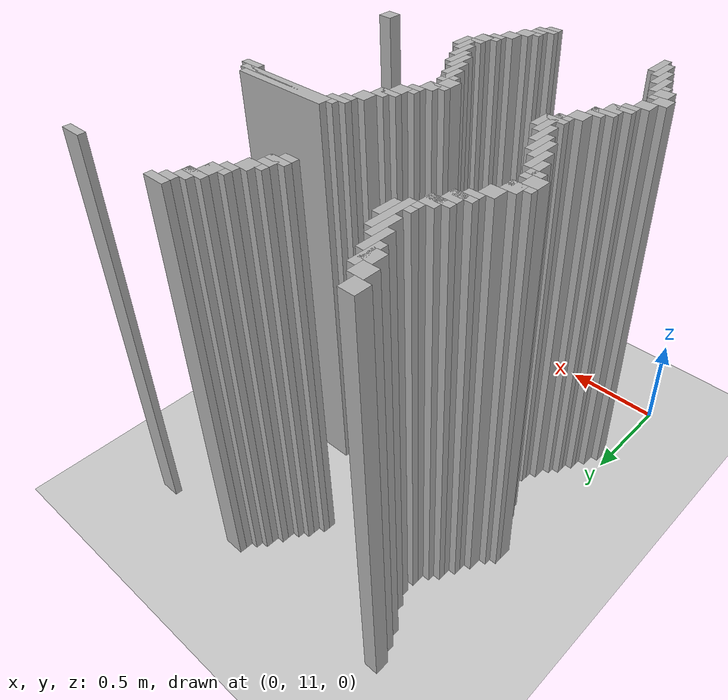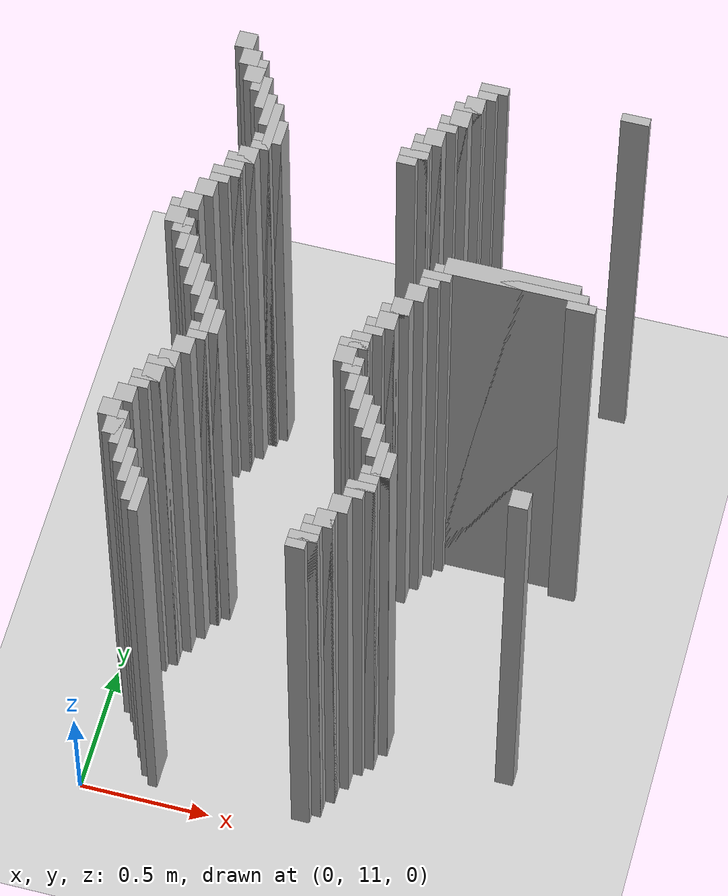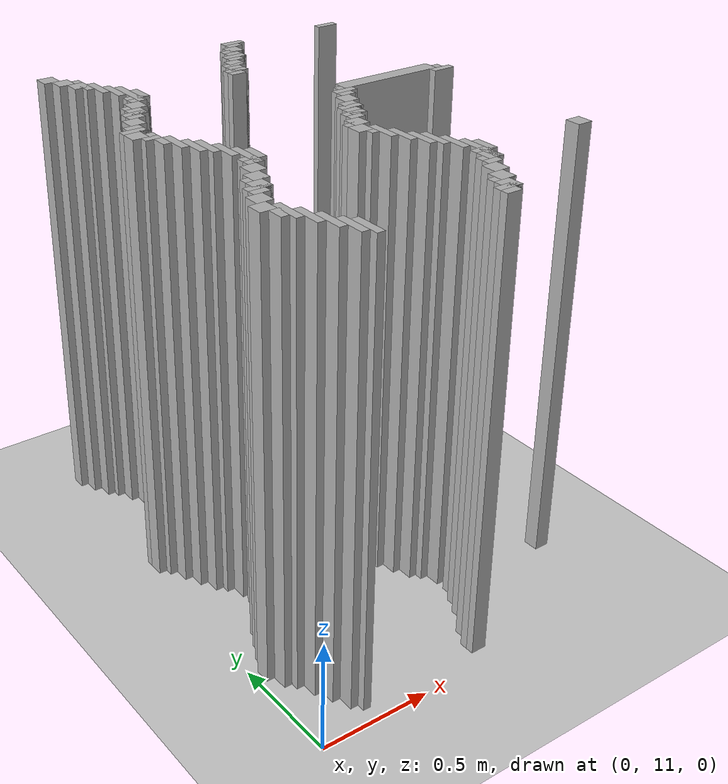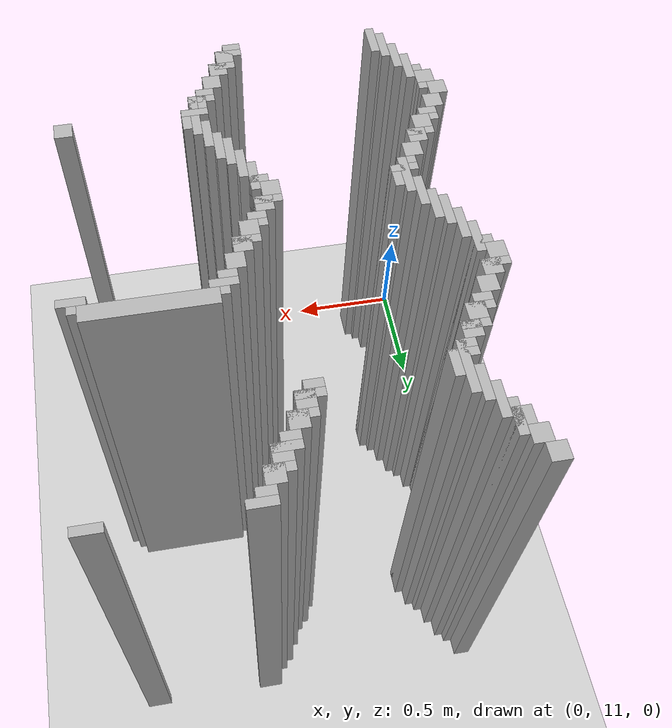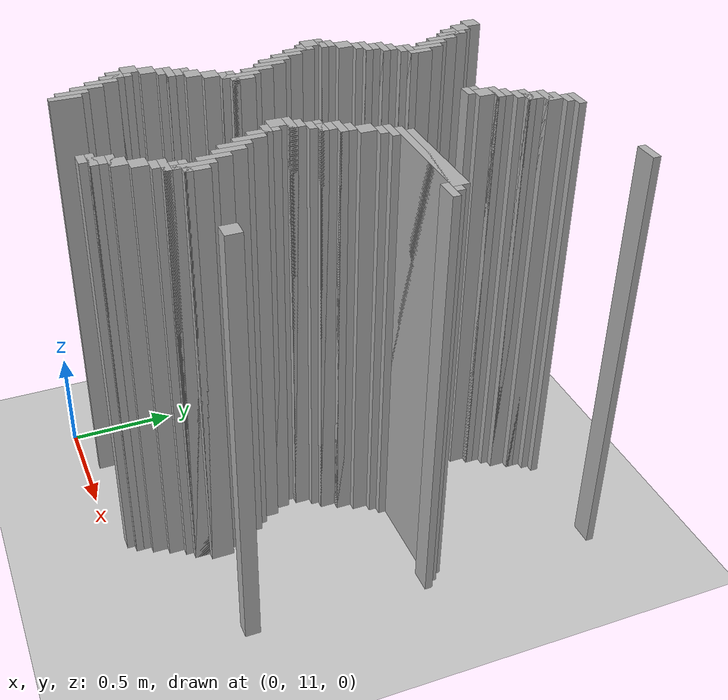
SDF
<sdf version="1.6">
 <world name="slam_world">
  <model name="ground_plane">
   <static>true</static>
   <link name="link">
    <collision name="collision">
     <geometry><plane><normal>0 0 1</normal><size>100 100</size></plane></geometry>
    </collision>
    <visual name="visual">
     <geometry><plane><normal>0 0 1</normal><size>100 100</size></plane></geometry>
     <material>
      <ambient>0.8 0.8 0.8 1</ambient>
      <diffuse>0.8 0.8 0.8 1</diffuse>
      <specular>0.8 0.8 0.8 1</specular>
     </material>
    </visual>
   </link>
  </model>
  <model name="wall_1372">
   <static>true</static>
   <pose>0.10440835266821345 13.085846867749419 1.0 0 0 0</pose>
   <link name="link">
    <collision name="collision">
     <geometry><box><size>0.06960556844547564 0.06960556844547564 2.0</size></box></geometry>
    </collision>
    <visual name="visual">
     <geometry><box><size>0.06960556844547564 0.06960556844547564 2.0</size></box></geometry>
     <material><ambient>0.5 0.5 0.5 1</ambient><diffuse>0.7 0.7 0.7 1</diffuse></material>
    </visual>
   </link>
  </model>
  <model name="wall_1373">
   <static>true</static>
   <pose>1.0266821345707655 13.103248259860788 1.0 0 0 0</pose>
   <link name="link">
    <collision name="collision">
     <geometry><box><size>0.10440835266821345 0.03480278422273782 2.0</size></box></geometry>
    </collision>
    <visual name="visual">
     <geometry><box><size>0.10440835266821345 0.03480278422273782 2.0</size></box></geometry>
     <material><ambient>0.5 0.5 0.5 1</ambient><diffuse>0.7 0.7 0.7 1</diffuse></material>
    </visual>
   </link>
  </model>
  <model name="wall_1374">
   <static>true</static>
   <pose>1.548723897911833 13.103248259860788 1.0 0 0 0</pose>
   <link name="link">
    <collision name="collision">
     <geometry><box><size>0.10440835266821345 0.03480278422273782 2.0</size></box></geometry>
    </collision>
    <visual name="visual">
     <geometry><box><size>0.10440835266821345 0.03480278422273782 2.0</size></box></geometry>
     <material><ambient>0.5 0.5 0.5 1</ambient><diffuse>0.7 0.7 0.7 1</diffuse></material>
    </visual>
   </link>
  </model>
  <model name="wall_1387">
   <static>true</static>
   <pose>1.0092807424593968 13.06844547563805 1.0 0 0 0</pose>
   <link name="link">
    <collision name="collision">
     <geometry><box><size>0.06960556844547564 0.03480278422273782 2.0</size></box></geometry>
    </collision>
    <visual name="visual">
     <geometry><box><size>0.06960556844547564 0.03480278422273782 2.0</size></box></geometry>
     <material><ambient>0.5 0.5 0.5 1</ambient><diffuse>0.7 0.7 0.7 1</diffuse></material>
    </visual>
   </link>
  </model>
  <model name="wall_1399">
   <static>true</static>
   <pose>0.13921113689095127 13.016241299303944 1.0 0 0 0</pose>
   <link name="link">
    <collision name="collision">
     <geometry><box><size>0.06960556844547564 0.06960556844547564 2.0</size></box></geometry>
    </collision>
    <visual name="visual">
     <geometry><box><size>0.06960556844547564 0.06960556844547564 2.0</size></box></geometry>
     <material><ambient>0.5 0.5 0.5 1</ambient><diffuse>0.7 0.7 0.7 1</diffuse></material>
    </visual>
   </link>
  </model>
  <model name="wall_1400">
   <static>true</static>
   <pose>0.974477958236659 13.016241299303944 1.0 0 0 0</pose>
   <link name="link">
    <collision name="collision">
     <geometry><box><size>0.06960556844547564 0.06960556844547564 2.0</size></box></geometry>
    </collision>
    <visual name="visual">
     <geometry><box><size>0.06960556844547564 0.06960556844547564 2.0</size></box></geometry>
     <material><ambient>0.5 0.5 0.5 1</ambient><diffuse>0.7 0.7 0.7 1</diffuse></material>
    </visual>
   </link>
  </model>
  <model name="wall_1414">
   <static>true</static>
   <pose>0.191415313225058 12.946635730858468 1.0 0 0 0</pose>
   <link name="link">
    <collision name="collision">
     <geometry><box><size>0.03480278422273782 0.13921113689095127 2.0</size></box></geometry>
    </collision>
    <visual name="visual">
     <geometry><box><size>0.03480278422273782 0.13921113689095127 2.0</size></box></geometry>
     <material><ambient>0.5 0.5 0.5 1</ambient><diffuse>0.7 0.7 0.7 1</diffuse></material>
    </visual>
   </link>
  </model>
  <model name="wall_1415">
   <static>true</static>
   <pose>0.95707656612529 12.998839907192576 1.0 0 0 0</pose>
   <link name="link">
    <collision name="collision">
     <geometry><box><size>0.10440835266821345 0.03480278422273782 2.0</size></box></geometry>
    </collision>
    <visual name="visual">
     <geometry><box><size>0.10440835266821345 0.03480278422273782 2.0</size></box></geometry>
     <material><ambient>0.5 0.5 0.5 1</ambient><diffuse>0.7 0.7 0.7 1</diffuse></material>
    </visual>
   </link>
  </model>
  <model name="wall_1429">
   <static>true</static>
   <pose>0.17401392111368907 12.946635730858468 1.0 0 0 0</pose>
   <link name="link">
    <collision name="collision">
     <geometry><box><size>0.06960556844547564 0.06960556844547564 2.0</size></box></geometry>
    </collision>
    <visual name="visual">
     <geometry><box><size>0.06960556844547564 0.06960556844547564 2.0</size></box></geometry>
     <material><ambient>0.5 0.5 0.5 1</ambient><diffuse>0.7 0.7 0.7 1</diffuse></material>
    </visual>
   </link>
  </model>
  <model name="wall_1430">
   <static>true</static>
   <pose>0.9396751740139211 12.946635730858468 1.0 0 0 0</pose>
   <link name="link">
    <collision name="collision">
     <geometry><box><size>0.06960556844547564 0.06960556844547564 2.0</size></box></geometry>
    </collision>
    <visual name="visual">
     <geometry><box><size>0.06960556844547564 0.06960556844547564 2.0</size></box></geometry>
     <material><ambient>0.5 0.5 0.5 1</ambient><diffuse>0.7 0.7 0.7 1</diffuse></material>
    </visual>
   </link>
  </model>
  <model name="wall_1444">
   <static>true</static>
   <pose>0.2262180974477958 12.877030162412993 1.0 0 0 0</pose>
   <link name="link">
    <collision name="collision">
     <geometry><box><size>0.03480278422273782 0.13921113689095127 2.0</size></box></geometry>
    </collision>
    <visual name="visual">
     <geometry><box><size>0.03480278422273782 0.13921113689095127 2.0</size></box></geometry>
     <material><ambient>0.5 0.5 0.5 1</ambient><diffuse>0.7 0.7 0.7 1</diffuse></material>
    </visual>
   </link>
  </model>
  <model name="wall_1445">
   <static>true</static>
   <pose>0.9222737819025522 12.929234338747099 1.0 0 0 0</pose>
   <link name="link">
    <collision name="collision">
     <geometry><box><size>0.10440835266821345 0.03480278422273782 2.0</size></box></geometry>
    </collision>
    <visual name="visual">
     <geometry><box><size>0.10440835266821345 0.03480278422273782 2.0</size></box></geometry>
     <material><ambient>0.5 0.5 0.5 1</ambient><diffuse>0.7 0.7 0.7 1</diffuse></material>
    </visual>
   </link>
  </model>
  <model name="wall_1459">
   <static>true</static>
   <pose>0.9048723897911832 12.894431554524362 1.0 0 0 0</pose>
   <link name="link">
    <collision name="collision">
     <geometry><box><size>0.06960556844547564 0.03480278422273782 2.0</size></box></geometry>
    </collision>
    <visual name="visual">
     <geometry><box><size>0.06960556844547564 0.03480278422273782 2.0</size></box></geometry>
     <material><ambient>0.5 0.5 0.5 1</ambient><diffuse>0.7 0.7 0.7 1</diffuse></material>
    </visual>
   </link>
  </model>
  <model name="wall_1467">
   <static>true</static>
   <pose>0.2610208816705336 12.807424593967516 1.0 0 0 0</pose>
   <link name="link">
    <collision name="collision">
     <geometry><box><size>0.03480278422273782 0.13921113689095127 2.0</size></box></geometry>
    </collision>
    <visual name="visual">
     <geometry><box><size>0.03480278422273782 0.13921113689095127 2.0</size></box></geometry>
     <material><ambient>0.5 0.5 0.5 1</ambient><diffuse>0.7 0.7 0.7 1</diffuse></material>
    </visual>
   </link>
  </model>
  <model name="wall_1468">
   <static>true</static>
   <pose>0.8700696055684455 12.842227378190255 1.0 0 0 0</pose>
   <link name="link">
    <collision name="collision">
     <geometry><box><size>0.06960556844547564 0.06960556844547564 2.0</size></box></geometry>
    </collision>
    <visual name="visual">
     <geometry><box><size>0.06960556844547564 0.06960556844547564 2.0</size></box></geometry>
     <material><ambient>0.5 0.5 0.5 1</ambient><diffuse>0.7 0.7 0.7 1</diffuse></material>
    </visual>
   </link>
  </model>
  <model name="wall_1482">
   <static>true</static>
   <pose>0.29582366589327147 12.737819025522041 1.0 0 0 0</pose>
   <link name="link">
    <collision name="collision">
     <geometry><box><size>0.03480278422273782 0.2088167053364269 2.0</size></box></geometry>
    </collision>
    <visual name="visual">
     <geometry><box><size>0.03480278422273782 0.2088167053364269 2.0</size></box></geometry>
     <material><ambient>0.5 0.5 0.5 1</ambient><diffuse>0.7 0.7 0.7 1</diffuse></material>
    </visual>
   </link>
  </model>
  <model name="wall_1483">
   <static>true</static>
   <pose>0.8526682134570766 12.824825986078885 1.0 0 0 0</pose>
   <link name="link">
    <collision name="collision">
     <geometry><box><size>0.10440835266821345 0.03480278422273782 2.0</size></box></geometry>
    </collision>
    <visual name="visual">
     <geometry><box><size>0.10440835266821345 0.03480278422273782 2.0</size></box></geometry>
     <material><ambient>0.5 0.5 0.5 1</ambient><diffuse>0.7 0.7 0.7 1</diffuse></material>
    </visual>
   </link>
  </model>
  <model name="wall_1497">
   <static>true</static>
   <pose>0.8352668213457076 12.772621809744779 1.0 0 0 0</pose>
   <link name="link">
    <collision name="collision">
     <geometry><box><size>0.06960556844547564 0.06960556844547564 2.0</size></box></geometry>
    </collision>
    <visual name="visual">
     <geometry><box><size>0.06960556844547564 0.06960556844547564 2.0</size></box></geometry>
     <material><ambient>0.5 0.5 0.5 1</ambient><diffuse>0.7 0.7 0.7 1</diffuse></material>
    </visual>
   </link>
  </model>
  <model name="wall_1505">
   <static>true</static>
   <pose>0.3306264501160093 12.720417633410673 1.0 0 0 0</pose>
   <link name="link">
    <collision name="collision">
     <geometry><box><size>0.03480278422273782 0.10440835266821345 2.0</size></box></geometry>
    </collision>
    <visual name="visual">
     <geometry><box><size>0.03480278422273782 0.10440835266821345 2.0</size></box></geometry>
     <material><ambient>0.5 0.5 0.5 1</ambient><diffuse>0.7 0.7 0.7 1</diffuse></material>
    </visual>
   </link>
  </model>
  <model name="wall_1506">
   <static>true</static>
   <pose>0.8178654292343387 12.75522041763341 1.0 0 0 0</pose>
   <link name="link">
    <collision name="collision">
     <geometry><box><size>0.10440835266821345 0.03480278422273782 2.0</size></box></geometry>
    </collision>
    <visual name="visual">
     <geometry><box><size>0.10440835266821345 0.03480278422273782 2.0</size></box></geometry>
     <material><ambient>0.5 0.5 0.5 1</ambient><diffuse>0.7 0.7 0.7 1</diffuse></material>
    </visual>
   </link>
  </model>
  <model name="wall_1520">
   <static>true</static>
   <pose>0.8004640371229698 12.720417633410673 1.0 0 0 0</pose>
   <link name="link">
    <collision name="collision">
     <geometry><box><size>0.06960556844547564 0.03480278422273782 2.0</size></box></geometry>
    </collision>
    <visual name="visual">
     <geometry><box><size>0.06960556844547564 0.03480278422273782 2.0</size></box></geometry>
     <material><ambient>0.5 0.5 0.5 1</ambient><diffuse>0.7 0.7 0.7 1</diffuse></material>
    </visual>
   </link>
  </model>
  <model name="wall_1530">
   <static>true</static>
   <pose>0.29582366589327147 12.685614849187935 1.0 0 0 0</pose>
   <link name="link">
    <collision name="collision">
     <geometry><box><size>0.10440835266821345 0.03480278422273782 2.0</size></box></geometry>
    </collision>
    <visual name="visual">
     <geometry><box><size>0.10440835266821345 0.03480278422273782 2.0</size></box></geometry>
     <material><ambient>0.5 0.5 0.5 1</ambient><diffuse>0.7 0.7 0.7 1</diffuse></material>
    </visual>
   </link>
  </model>
  <model name="wall_1543">
   <static>true</static>
   <pose>0.27842227378190254 12.650812064965196 1.0 0 0 0</pose>
   <link name="link">
    <collision name="collision">
     <geometry><box><size>0.06960556844547564 0.03480278422273782 2.0</size></box></geometry>
    </collision>
    <visual name="visual">
     <geometry><box><size>0.06960556844547564 0.03480278422273782 2.0</size></box></geometry>
     <material><ambient>0.5 0.5 0.5 1</ambient><diffuse>0.7 0.7 0.7 1</diffuse></material>
    </visual>
   </link>
  </model>
  <model name="wall_1555">
   <static>true</static>
   <pose>0.24361948955916474 12.59860788863109 1.0 0 0 0</pose>
   <link name="link">
    <collision name="collision">
     <geometry><box><size>0.06960556844547564 0.06960556844547564 2.0</size></box></geometry>
    </collision>
    <visual name="visual">
     <geometry><box><size>0.06960556844547564 0.06960556844547564 2.0</size></box></geometry>
     <material><ambient>0.5 0.5 0.5 1</ambient><diffuse>0.7 0.7 0.7 1</diffuse></material>
    </visual>
   </link>
  </model>
  <model name="wall_1568">
   <static>true</static>
   <pose>0.2262180974477958 12.581206496519721 1.0 0 0 0</pose>
   <link name="link">
    <collision name="collision">
     <geometry><box><size>0.10440835266821345 0.03480278422273782 2.0</size></box></geometry>
    </collision>
    <visual name="visual">
     <geometry><box><size>0.10440835266821345 0.03480278422273782 2.0</size></box></geometry>
     <material><ambient>0.5 0.5 0.5 1</ambient><diffuse>0.7 0.7 0.7 1</diffuse></material>
    </visual>
   </link>
  </model>
  <model name="wall_1581">
   <static>true</static>
   <pose>0.2088167053364269 12.529002320185615 1.0 0 0 0</pose>
   <link name="link">
    <collision name="collision">
     <geometry><box><size>0.06960556844547564 0.06960556844547564 2.0</size></box></geometry>
    </collision>
    <visual name="visual">
     <geometry><box><size>0.06960556844547564 0.06960556844547564 2.0</size></box></geometry>
     <material><ambient>0.5 0.5 0.5 1</ambient><diffuse>0.7 0.7 0.7 1</diffuse></material>
    </visual>
   </link>
  </model>
  <model name="wall_1592">
   <static>true</static>
   <pose>0.191415313225058 12.511600928074245 1.0 0 0 0</pose>
   <link name="link">
    <collision name="collision">
     <geometry><box><size>0.10440835266821345 0.03480278422273782 2.0</size></box></geometry>
    </collision>
    <visual name="visual">
     <geometry><box><size>0.10440835266821345 0.03480278422273782 2.0</size></box></geometry>
     <material><ambient>0.5 0.5 0.5 1</ambient><diffuse>0.7 0.7 0.7 1</diffuse></material>
    </visual>
   </link>
  </model>
  <model name="wall_1605">
   <static>true</static>
   <pose>0.17401392111368907 12.476798143851507 1.0 0 0 0</pose>
   <link name="link">
    <collision name="collision">
     <geometry><box><size>0.06960556844547564 0.03480278422273782 2.0</size></box></geometry>
    </collision>
    <visual name="visual">
     <geometry><box><size>0.06960556844547564 0.03480278422273782 2.0</size></box></geometry>
     <material><ambient>0.5 0.5 0.5 1</ambient><diffuse>0.7 0.7 0.7 1</diffuse></material>
    </visual>
   </link>
  </model>
  <model name="wall_1612">
   <static>true</static>
   <pose>0.13921113689095127 12.424593967517401 1.0 0 0 0</pose>
   <link name="link">
    <collision name="collision">
     <geometry><box><size>0.06960556844547564 0.06960556844547564 2.0</size></box></geometry>
    </collision>
    <visual name="visual">
     <geometry><box><size>0.06960556844547564 0.06960556844547564 2.0</size></box></geometry>
     <material><ambient>0.5 0.5 0.5 1</ambient><diffuse>0.7 0.7 0.7 1</diffuse></material>
    </visual>
   </link>
  </model>
  <model name="wall_1625">
   <static>true</static>
   <pose>0.10440835266821345 12.354988399071924 1.0 0 0 0</pose>
   <link name="link">
    <collision name="collision">
     <geometry><box><size>0.06960556844547564 0.06960556844547564 2.0</size></box></geometry>
    </collision>
    <visual name="visual">
     <geometry><box><size>0.06960556844547564 0.06960556844547564 2.0</size></box></geometry>
     <material><ambient>0.5 0.5 0.5 1</ambient><diffuse>0.7 0.7 0.7 1</diffuse></material>
    </visual>
   </link>
  </model>
  <model name="wall_1638">
   <static>true</static>
   <pose>0.08700696055684454 12.337587006960556 1.0 0 0 0</pose>
   <link name="link">
    <collision name="collision">
     <geometry><box><size>0.10440835266821345 0.03480278422273782 2.0</size></box></geometry>
    </collision>
    <visual name="visual">
     <geometry><box><size>0.10440835266821345 0.03480278422273782 2.0</size></box></geometry>
     <material><ambient>0.5 0.5 0.5 1</ambient><diffuse>0.7 0.7 0.7 1</diffuse></material>
    </visual>
   </link>
  </model>
  <model name="wall_1639">
   <static>true</static>
   <pose>1.2877030162412992 12.320185614849187 1.0 0 0 0</pose>
   <link name="link">
    <collision name="collision">
     <geometry><box><size>0.4872389791183295 0.06960556844547564 2.0</size></box></geometry>
    </collision>
    <visual name="visual">
     <geometry><box><size>0.4872389791183295 0.06960556844547564 2.0</size></box></geometry>
     <material><ambient>0.5 0.5 0.5 1</ambient><diffuse>0.7 0.7 0.7 1</diffuse></material>
    </visual>
   </link>
  </model>
  <model name="wall_1650">
   <static>true</static>
   <pose>0.06960556844547564 12.28538283062645 1.0 0 0 0</pose>
   <link name="link">
    <collision name="collision">
     <geometry><box><size>0.06960556844547564 0.06960556844547564 2.0</size></box></geometry>
    </collision>
    <visual name="visual">
     <geometry><box><size>0.06960556844547564 0.06960556844547564 2.0</size></box></geometry>
     <material><ambient>0.5 0.5 0.5 1</ambient><diffuse>0.7 0.7 0.7 1</diffuse></material>
    </visual>
   </link>
  </model>
  <model name="wall_1651">
   <static>true</static>
   <pose>1.2877030162412992 12.302784222737818 1.0 0 0 0</pose>
   <link name="link">
    <collision name="collision">
     <geometry><box><size>0.5568445475638051 0.03480278422273782 2.0</size></box></geometry>
    </collision>
    <visual name="visual">
     <geometry><box><size>0.5568445475638051 0.03480278422273782 2.0</size></box></geometry>
     <material><ambient>0.5 0.5 0.5 1</ambient><diffuse>0.7 0.7 0.7 1</diffuse></material>
    </visual>
   </link>
  </model>
  <model name="wall_1662">
   <static>true</static>
   <pose>0.12180974477958237 12.215777262180975 1.0 0 0 0</pose>
   <link name="link">
    <collision name="collision">
     <geometry><box><size>0.03480278422273782 0.13921113689095127 2.0</size></box></geometry>
    </collision>
    <visual name="visual">
     <geometry><box><size>0.03480278422273782 0.13921113689095127 2.0</size></box></geometry>
     <material><ambient>0.5 0.5 0.5 1</ambient><diffuse>0.7 0.7 0.7 1</diffuse></material>
    </visual>
   </link>
  </model>
  <model name="wall_1663">
   <static>true</static>
   <pose>1.0266821345707655 12.267981438515081 1.0 0 0 0</pose>
   <link name="link">
    <collision name="collision">
     <geometry><box><size>0.10440835266821345 0.03480278422273782 2.0</size></box></geometry>
    </collision>
    <visual name="visual">
     <geometry><box><size>0.10440835266821345 0.03480278422273782 2.0</size></box></geometry>
     <material><ambient>0.5 0.5 0.5 1</ambient><diffuse>0.7 0.7 0.7 1</diffuse></material>
    </visual>
   </link>
  </model>
  <model name="wall_1664">
   <static>true</static>
   <pose>1.548723897911833 12.267981438515081 1.0 0 0 0</pose>
   <link name="link">
    <collision name="collision">
     <geometry><box><size>0.10440835266821345 0.03480278422273782 2.0</size></box></geometry>
    </collision>
    <visual name="visual">
     <geometry><box><size>0.10440835266821345 0.03480278422273782 2.0</size></box></geometry>
     <material><ambient>0.5 0.5 0.5 1</ambient><diffuse>0.7 0.7 0.7 1</diffuse></material>
    </visual>
   </link>
  </model>
  <model name="wall_1681">
   <static>true</static>
   <pose>0.10440835266821345 12.233178654292344 1.0 0 0 0</pose>
   <link name="link">
    <collision name="collision">
     <geometry><box><size>0.06960556844547564 0.03480278422273782 2.0</size></box></geometry>
    </collision>
    <visual name="visual">
     <geometry><box><size>0.06960556844547564 0.03480278422273782 2.0</size></box></geometry>
     <material><ambient>0.5 0.5 0.5 1</ambient><diffuse>0.7 0.7 0.7 1</diffuse></material>
    </visual>
   </link>
  </model>
  <model name="wall_1682">
   <static>true</static>
   <pose>1.0092807424593968 12.233178654292344 1.0 0 0 0</pose>
   <link name="link">
    <collision name="collision">
     <geometry><box><size>0.06960556844547564 0.03480278422273782 2.0</size></box></geometry>
    </collision>
    <visual name="visual">
     <geometry><box><size>0.06960556844547564 0.03480278422273782 2.0</size></box></geometry>
     <material><ambient>0.5 0.5 0.5 1</ambient><diffuse>0.7 0.7 0.7 1</diffuse></material>
    </visual>
   </link>
  </model>
  <model name="wall_1695">
   <static>true</static>
   <pose>0.15661252900232017 12.146171693735498 1.0 0 0 0</pose>
   <link name="link">
    <collision name="collision">
     <geometry><box><size>0.03480278422273782 0.13921113689095127 2.0</size></box></geometry>
    </collision>
    <visual name="visual">
     <geometry><box><size>0.03480278422273782 0.13921113689095127 2.0</size></box></geometry>
     <material><ambient>0.5 0.5 0.5 1</ambient><diffuse>0.7 0.7 0.7 1</diffuse></material>
    </visual>
   </link>
  </model>
  <model name="wall_1696">
   <static>true</static>
   <pose>0.974477958236659 12.180974477958236 1.0 0 0 0</pose>
   <link name="link">
    <collision name="collision">
     <geometry><box><size>0.06960556844547564 0.06960556844547564 2.0</size></box></geometry>
    </collision>
    <visual name="visual">
     <geometry><box><size>0.06960556844547564 0.06960556844547564 2.0</size></box></geometry>
     <material><ambient>0.5 0.5 0.5 1</ambient><diffuse>0.7 0.7 0.7 1</diffuse></material>
    </visual>
   </link>
  </model>
  <model name="wall_1709">
   <static>true</static>
   <pose>0.191415313225058 12.076566125290023 1.0 0 0 0</pose>
   <link name="link">
    <collision name="collision">
     <geometry><box><size>0.03480278422273782 0.13921113689095127 2.0</size></box></geometry>
    </collision>
    <visual name="visual">
     <geometry><box><size>0.03480278422273782 0.13921113689095127 2.0</size></box></geometry>
     <material><ambient>0.5 0.5 0.5 1</ambient><diffuse>0.7 0.7 0.7 1</diffuse></material>
    </visual>
   </link>
  </model>
  <model name="wall_1710">
   <static>true</static>
   <pose>0.9396751740139211 12.11136890951276 1.0 0 0 0</pose>
   <link name="link">
    <collision name="collision">
     <geometry><box><size>0.06960556844547564 0.06960556844547564 2.0</size></box></geometry>
    </collision>
    <visual name="visual">
     <geometry><box><size>0.06960556844547564 0.06960556844547564 2.0</size></box></geometry>
     <material><ambient>0.5 0.5 0.5 1</ambient><diffuse>0.7 0.7 0.7 1</diffuse></material>
    </visual>
   </link>
  </model>
  <model name="wall_1723">
   <static>true</static>
   <pose>0.2262180974477958 12.041763341067284 1.0 0 0 0</pose>
   <link name="link">
    <collision name="collision">
     <geometry><box><size>0.03480278422273782 0.13921113689095127 2.0</size></box></geometry>
    </collision>
    <visual name="visual">
     <geometry><box><size>0.03480278422273782 0.13921113689095127 2.0</size></box></geometry>
     <material><ambient>0.5 0.5 0.5 1</ambient><diffuse>0.7 0.7 0.7 1</diffuse></material>
    </visual>
   </link>
  </model>
  <model name="wall_1724">
   <static>true</static>
   <pose>0.9222737819025522 12.093967517401392 1.0 0 0 0</pose>
   <link name="link">
    <collision name="collision">
     <geometry><box><size>0.10440835266821345 0.03480278422273782 2.0</size></box></geometry>
    </collision>
    <visual name="visual">
     <geometry><box><size>0.10440835266821345 0.03480278422273782 2.0</size></box></geometry>
     <material><ambient>0.5 0.5 0.5 1</ambient><diffuse>0.7 0.7 0.7 1</diffuse></material>
    </visual>
   </link>
  </model>
  <model name="wall_1737">
   <static>true</static>
   <pose>0.9048723897911832 12.041763341067284 1.0 0 0 0</pose>
   <link name="link">
    <collision name="collision">
     <geometry><box><size>0.06960556844547564 0.06960556844547564 2.0</size></box></geometry>
    </collision>
    <visual name="visual">
     <geometry><box><size>0.06960556844547564 0.06960556844547564 2.0</size></box></geometry>
     <material><ambient>0.5 0.5 0.5 1</ambient><diffuse>0.7 0.7 0.7 1</diffuse></material>
    </visual>
   </link>
  </model>
  <model name="wall_1747">
   <static>true</static>
   <pose>0.2610208816705336 11.97215777262181 1.0 0 0 0</pose>
   <link name="link">
    <collision name="collision">
     <geometry><box><size>0.03480278422273782 0.13921113689095127 2.0</size></box></geometry>
    </collision>
    <visual name="visual">
     <geometry><box><size>0.03480278422273782 0.13921113689095127 2.0</size></box></geometry>
     <material><ambient>0.5 0.5 0.5 1</ambient><diffuse>0.7 0.7 0.7 1</diffuse></material>
    </visual>
   </link>
  </model>
  <model name="wall_1748">
   <static>true</static>
   <pose>0.8874709976798143 12.024361948955915 1.0 0 0 0</pose>
   <link name="link">
    <collision name="collision">
     <geometry><box><size>0.10440835266821345 0.03480278422273782 2.0</size></box></geometry>
    </collision>
    <visual name="visual">
     <geometry><box><size>0.10440835266821345 0.03480278422273782 2.0</size></box></geometry>
     <material><ambient>0.5 0.5 0.5 1</ambient><diffuse>0.7 0.7 0.7 1</diffuse></material>
    </visual>
   </link>
  </model>
  <model name="wall_1761">
   <static>true</static>
   <pose>0.8700696055684455 11.989559164733178 1.0 0 0 0</pose>
   <link name="link">
    <collision name="collision">
     <geometry><box><size>0.06960556844547564 0.03480278422273782 2.0</size></box></geometry>
    </collision>
    <visual name="visual">
     <geometry><box><size>0.06960556844547564 0.03480278422273782 2.0</size></box></geometry>
     <material><ambient>0.5 0.5 0.5 1</ambient><diffuse>0.7 0.7 0.7 1</diffuse></material>
    </visual>
   </link>
  </model>
  <model name="wall_1769">
   <static>true</static>
   <pose>0.29582366589327147 11.885150812064964 1.0 0 0 0</pose>
   <link name="link">
    <collision name="collision">
     <geometry><box><size>0.03480278422273782 0.17401392111368907 2.0</size></box></geometry>
    </collision>
    <visual name="visual">
     <geometry><box><size>0.03480278422273782 0.17401392111368907 2.0</size></box></geometry>
     <material><ambient>0.5 0.5 0.5 1</ambient><diffuse>0.7 0.7 0.7 1</diffuse></material>
    </visual>
   </link>
  </model>
  <model name="wall_1770">
   <static>true</static>
   <pose>0.8352668213457076 11.937354988399072 1.0 0 0 0</pose>
   <link name="link">
    <collision name="collision">
     <geometry><box><size>0.06960556844547564 0.06960556844547564 2.0</size></box></geometry>
    </collision>
    <visual name="visual">
     <geometry><box><size>0.06960556844547564 0.06960556844547564 2.0</size></box></geometry>
     <material><ambient>0.5 0.5 0.5 1</ambient><diffuse>0.7 0.7 0.7 1</diffuse></material>
    </visual>
   </link>
  </model>
  <model name="wall_1783">
   <static>true</static>
   <pose>0.3306264501160093 11.885150812064964 1.0 0 0 0</pose>
   <link name="link">
    <collision name="collision">
     <geometry><box><size>0.03480278422273782 0.10440835266821345 2.0</size></box></geometry>
    </collision>
    <visual name="visual">
     <geometry><box><size>0.03480278422273782 0.10440835266821345 2.0</size></box></geometry>
     <material><ambient>0.5 0.5 0.5 1</ambient><diffuse>0.7 0.7 0.7 1</diffuse></material>
    </visual>
   </link>
  </model>
  <model name="wall_1784">
   <static>true</static>
   <pose>0.8178654292343387 11.919953596287703 1.0 0 0 0</pose>
   <link name="link">
    <collision name="collision">
     <geometry><box><size>0.10440835266821345 0.03480278422273782 2.0</size></box></geometry>
    </collision>
    <visual name="visual">
     <geometry><box><size>0.10440835266821345 0.03480278422273782 2.0</size></box></geometry>
     <material><ambient>0.5 0.5 0.5 1</ambient><diffuse>0.7 0.7 0.7 1</diffuse></material>
    </visual>
   </link>
  </model>
  <model name="wall_1797">
   <static>true</static>
   <pose>0.8004640371229698 11.867749419953595 1.0 0 0 0</pose>
   <link name="link">
    <collision name="collision">
     <geometry><box><size>0.06960556844547564 0.06960556844547564 2.0</size></box></geometry>
    </collision>
    <visual name="visual">
     <geometry><box><size>0.06960556844547564 0.06960556844547564 2.0</size></box></geometry>
     <material><ambient>0.5 0.5 0.5 1</ambient><diffuse>0.7 0.7 0.7 1</diffuse></material>
    </visual>
   </link>
  </model>
  <model name="wall_1808">
   <static>true</static>
   <pose>0.29582366589327147 11.850348027842227 1.0 0 0 0</pose>
   <link name="link">
    <collision name="collision">
     <geometry><box><size>0.10440835266821345 0.03480278422273782 2.0</size></box></geometry>
    </collision>
    <visual name="visual">
     <geometry><box><size>0.10440835266821345 0.03480278422273782 2.0</size></box></geometry>
     <material><ambient>0.5 0.5 0.5 1</ambient><diffuse>0.7 0.7 0.7 1</diffuse></material>
    </visual>
   </link>
  </model>
  <model name="wall_1809">
   <static>true</static>
   <pose>0.8526682134570766 11.79814385150812 1.0 0 0 0</pose>
   <link name="link">
    <collision name="collision">
     <geometry><box><size>0.03480278422273782 0.13921113689095127 2.0</size></box></geometry>
    </collision>
    <visual name="visual">
     <geometry><box><size>0.03480278422273782 0.13921113689095127 2.0</size></box></geometry>
     <material><ambient>0.5 0.5 0.5 1</ambient><diffuse>0.7 0.7 0.7 1</diffuse></material>
    </visual>
   </link>
  </model>
  <model name="wall_1821">
   <static>true</static>
   <pose>0.27842227378190254 11.81554524361949 1.0 0 0 0</pose>
   <link name="link">
    <collision name="collision">
     <geometry><box><size>0.06960556844547564 0.03480278422273782 2.0</size></box></geometry>
    </collision>
    <visual name="visual">
     <geometry><box><size>0.06960556844547564 0.03480278422273782 2.0</size></box></geometry>
     <material><ambient>0.5 0.5 0.5 1</ambient><diffuse>0.7 0.7 0.7 1</diffuse></material>
    </visual>
   </link>
  </model>
  <model name="wall_1822">
   <static>true</static>
   <pose>0.8352668213457076 11.81554524361949 1.0 0 0 0</pose>
   <link name="link">
    <collision name="collision">
     <geometry><box><size>0.06960556844547564 0.03480278422273782 2.0</size></box></geometry>
    </collision>
    <visual name="visual">
     <geometry><box><size>0.06960556844547564 0.03480278422273782 2.0</size></box></geometry>
     <material><ambient>0.5 0.5 0.5 1</ambient><diffuse>0.7 0.7 0.7 1</diffuse></material>
    </visual>
   </link>
  </model>
  <model name="wall_1835">
   <static>true</static>
   <pose>0.24361948955916474 11.763341067285383 1.0 0 0 0</pose>
   <link name="link">
    <collision name="collision">
     <geometry><box><size>0.06960556844547564 0.06960556844547564 2.0</size></box></geometry>
    </collision>
    <visual name="visual">
     <geometry><box><size>0.06960556844547564 0.06960556844547564 2.0</size></box></geometry>
     <material><ambient>0.5 0.5 0.5 1</ambient><diffuse>0.7 0.7 0.7 1</diffuse></material>
    </visual>
   </link>
  </model>
  <model name="wall_1836">
   <static>true</static>
   <pose>0.8874709976798143 11.728538283062644 1.0 0 0 0</pose>
   <link name="link">
    <collision name="collision">
     <geometry><box><size>0.03480278422273782 0.13921113689095127 2.0</size></box></geometry>
    </collision>
    <visual name="visual">
     <geometry><box><size>0.03480278422273782 0.13921113689095127 2.0</size></box></geometry>
     <material><ambient>0.5 0.5 0.5 1</ambient><diffuse>0.7 0.7 0.7 1</diffuse></material>
    </visual>
   </link>
  </model>
  <model name="wall_1849">
   <static>true</static>
   <pose>0.2088167053364269 11.693735498839906 1.0 0 0 0</pose>
   <link name="link">
    <collision name="collision">
     <geometry><box><size>0.06960556844547564 0.06960556844547564 2.0</size></box></geometry>
    </collision>
    <visual name="visual">
     <geometry><box><size>0.06960556844547564 0.06960556844547564 2.0</size></box></geometry>
     <material><ambient>0.5 0.5 0.5 1</ambient><diffuse>0.7 0.7 0.7 1</diffuse></material>
    </visual>
   </link>
  </model>
  <model name="wall_1850">
   <static>true</static>
   <pose>0.9222737819025522 11.658932714617169 1.0 0 0 0</pose>
   <link name="link">
    <collision name="collision">
     <geometry><box><size>0.03480278422273782 0.13921113689095127 2.0</size></box></geometry>
    </collision>
    <visual name="visual">
     <geometry><box><size>0.03480278422273782 0.13921113689095127 2.0</size></box></geometry>
     <material><ambient>0.5 0.5 0.5 1</ambient><diffuse>0.7 0.7 0.7 1</diffuse></material>
    </visual>
   </link>
  </model>
  <model name="wall_1863">
   <static>true</static>
   <pose>0.191415313225058 11.676334106728538 1.0 0 0 0</pose>
   <link name="link">
    <collision name="collision">
     <geometry><box><size>0.10440835266821345 0.03480278422273782 2.0</size></box></geometry>
    </collision>
    <visual name="visual">
     <geometry><box><size>0.10440835266821345 0.03480278422273782 2.0</size></box></geometry>
     <material><ambient>0.5 0.5 0.5 1</ambient><diffuse>0.7 0.7 0.7 1</diffuse></material>
    </visual>
   </link>
  </model>
  <model name="wall_1864">
   <static>true</static>
   <pose>0.95707656612529 11.624129930394432 1.0 0 0 0</pose>
   <link name="link">
    <collision name="collision">
     <geometry><box><size>0.03480278422273782 0.13921113689095127 2.0</size></box></geometry>
    </collision>
    <visual name="visual">
     <geometry><box><size>0.03480278422273782 0.13921113689095127 2.0</size></box></geometry>
     <material><ambient>0.5 0.5 0.5 1</ambient><diffuse>0.7 0.7 0.7 1</diffuse></material>
    </visual>
   </link>
  </model>
  <model name="wall_1877">
   <static>true</static>
   <pose>0.17401392111368907 11.624129930394432 1.0 0 0 0</pose>
   <link name="link">
    <collision name="collision">
     <geometry><box><size>0.06960556844547564 0.06960556844547564 2.0</size></box></geometry>
    </collision>
    <visual name="visual">
     <geometry><box><size>0.06960556844547564 0.06960556844547564 2.0</size></box></geometry>
     <material><ambient>0.5 0.5 0.5 1</ambient><diffuse>0.7 0.7 0.7 1</diffuse></material>
    </visual>
   </link>
  </model>
  <model name="wall_1886">
   <static>true</static>
   <pose>0.15661252900232017 11.606728538283063 1.0 0 0 0</pose>
   <link name="link">
    <collision name="collision">
     <geometry><box><size>0.10440835266821345 0.03480278422273782 2.0</size></box></geometry>
    </collision>
    <visual name="visual">
     <geometry><box><size>0.10440835266821345 0.03480278422273782 2.0</size></box></geometry>
     <material><ambient>0.5 0.5 0.5 1</ambient><diffuse>0.7 0.7 0.7 1</diffuse></material>
    </visual>
   </link>
  </model>
  <model name="wall_1887">
   <static>true</static>
   <pose>0.9918793503480278 11.554524361948955 1.0 0 0 0</pose>
   <link name="link">
    <collision name="collision">
     <geometry><box><size>0.03480278422273782 0.13921113689095127 2.0</size></box></geometry>
    </collision>
    <visual name="visual">
     <geometry><box><size>0.03480278422273782 0.13921113689095127 2.0</size></box></geometry>
     <material><ambient>0.5 0.5 0.5 1</ambient><diffuse>0.7 0.7 0.7 1</diffuse></material>
    </visual>
   </link>
  </model>
  <model name="wall_1900">
   <static>true</static>
   <pose>0.13921113689095127 11.571925754060324 1.0 0 0 0</pose>
   <link name="link">
    <collision name="collision">
     <geometry><box><size>0.06960556844547564 0.03480278422273782 2.0</size></box></geometry>
    </collision>
    <visual name="visual">
     <geometry><box><size>0.06960556844547564 0.03480278422273782 2.0</size></box></geometry>
     <material><ambient>0.5 0.5 0.5 1</ambient><diffuse>0.7 0.7 0.7 1</diffuse></material>
    </visual>
   </link>
  </model>
  <model name="wall_1906">
   <static>true</static>
   <pose>0.10440835266821345 11.519721577726218 1.0 0 0 0</pose>
   <link name="link">
    <collision name="collision">
     <geometry><box><size>0.06960556844547564 0.06960556844547564 2.0</size></box></geometry>
    </collision>
    <visual name="visual">
     <geometry><box><size>0.06960556844547564 0.06960556844547564 2.0</size></box></geometry>
     <material><ambient>0.5 0.5 0.5 1</ambient><diffuse>0.7 0.7 0.7 1</diffuse></material>
    </visual>
   </link>
  </model>
  <model name="wall_1907">
   <static>true</static>
   <pose>1.0266821345707655 11.450116009280743 1.0 0 0 0</pose>
   <link name="link">
    <collision name="collision">
     <geometry><box><size>0.03480278422273782 0.2088167053364269 2.0</size></box></geometry>
    </collision>
    <visual name="visual">
     <geometry><box><size>0.03480278422273782 0.2088167053364269 2.0</size></box></geometry>
     <material><ambient>0.5 0.5 0.5 1</ambient><diffuse>0.7 0.7 0.7 1</diffuse></material>
    </visual>
   </link>
  </model>
  <model name="wall_1920">
   <static>true</static>
   <pose>1.0614849187935034 11.467517401392112 1.0 0 0 0</pose>
   <link name="link">
    <collision name="collision">
     <geometry><box><size>0.03480278422273782 0.10440835266821345 2.0</size></box></geometry>
    </collision>
    <visual name="visual">
     <geometry><box><size>0.03480278422273782 0.10440835266821345 2.0</size></box></geometry>
     <material><ambient>0.5 0.5 0.5 1</ambient><diffuse>0.7 0.7 0.7 1</diffuse></material>
    </visual>
   </link>
  </model>
  <model name="wall_1933">
   <static>true</static>
   <pose>0.06960556844547564 11.450116009280743 1.0 0 0 0</pose>
   <link name="link">
    <collision name="collision">
     <geometry><box><size>0.06960556844547564 0.06960556844547564 2.0</size></box></geometry>
    </collision>
    <visual name="visual">
     <geometry><box><size>0.06960556844547564 0.06960556844547564 2.0</size></box></geometry>
     <material><ambient>0.5 0.5 0.5 1</ambient><diffuse>0.7 0.7 0.7 1</diffuse></material>
    </visual>
   </link>
  </model>
  <model name="wall_1934">
   <static>true</static>
   <pose>1.531322505800464 11.450116009280743 1.0 0 0 0</pose>
   <link name="link">
    <collision name="collision">
     <geometry><box><size>0.06960556844547564 0.06960556844547564 2.0</size></box></geometry>
    </collision>
    <visual name="visual">
     <geometry><box><size>0.06960556844547564 0.06960556844547564 2.0</size></box></geometry>
     <material><ambient>0.5 0.5 0.5 1</ambient><diffuse>0.7 0.7 0.7 1</diffuse></material>
    </visual>
   </link>
  </model>
  <model name="wall_1944">
   <static>true</static>
   <pose>0.12180974477958237 11.380510440835266 1.0 0 0 0</pose>
   <link name="link">
    <collision name="collision">
     <geometry><box><size>0.03480278422273782 0.13921113689095127 2.0</size></box></geometry>
    </collision>
    <visual name="visual">
     <geometry><box><size>0.03480278422273782 0.13921113689095127 2.0</size></box></geometry>
     <material><ambient>0.5 0.5 0.5 1</ambient><diffuse>0.7 0.7 0.7 1</diffuse></material>
    </visual>
   </link>
  </model>
  <model name="wall_1945">
   <static>true</static>
   <pose>1.0266821345707655 11.432714617169372 1.0 0 0 0</pose>
   <link name="link">
    <collision name="collision">
     <geometry><box><size>0.10440835266821345 0.03480278422273782 2.0</size></box></geometry>
    </collision>
    <visual name="visual">
     <geometry><box><size>0.10440835266821345 0.03480278422273782 2.0</size></box></geometry>
     <material><ambient>0.5 0.5 0.5 1</ambient><diffuse>0.7 0.7 0.7 1</diffuse></material>
    </visual>
   </link>
  </model>
  <model name="wall_1958">
   <static>true</static>
   <pose>0.10440835266821345 11.380510440835266 1.0 0 0 0</pose>
   <link name="link">
    <collision name="collision">
     <geometry><box><size>0.06960556844547564 0.06960556844547564 2.0</size></box></geometry>
    </collision>
    <visual name="visual">
     <geometry><box><size>0.06960556844547564 0.06960556844547564 2.0</size></box></geometry>
     <material><ambient>0.5 0.5 0.5 1</ambient><diffuse>0.7 0.7 0.7 1</diffuse></material>
    </visual>
   </link>
  </model>
  <model name="wall_1959">
   <static>true</static>
   <pose>1.0092807424593968 11.380510440835266 1.0 0 0 0</pose>
   <link name="link">
    <collision name="collision">
     <geometry><box><size>0.06960556844547564 0.06960556844547564 2.0</size></box></geometry>
    </collision>
    <visual name="visual">
     <geometry><box><size>0.06960556844547564 0.06960556844547564 2.0</size></box></geometry>
     <material><ambient>0.5 0.5 0.5 1</ambient><diffuse>0.7 0.7 0.7 1</diffuse></material>
    </visual>
   </link>
  </model>
  <model name="wall_1975">
   <static>true</static>
   <pose>0.15661252900232017 11.310904872389791 1.0 0 0 0</pose>
   <link name="link">
    <collision name="collision">
     <geometry><box><size>0.03480278422273782 0.13921113689095127 2.0</size></box></geometry>
    </collision>
    <visual name="visual">
     <geometry><box><size>0.03480278422273782 0.13921113689095127 2.0</size></box></geometry>
     <material><ambient>0.5 0.5 0.5 1</ambient><diffuse>0.7 0.7 0.7 1</diffuse></material>
    </visual>
   </link>
  </model>
  <model name="wall_1976">
   <static>true</static>
   <pose>0.9918793503480278 11.363109048723897 1.0 0 0 0</pose>
   <link name="link">
    <collision name="collision">
     <geometry><box><size>0.10440835266821345 0.03480278422273782 2.0</size></box></geometry>
    </collision>
    <visual name="visual">
     <geometry><box><size>0.10440835266821345 0.03480278422273782 2.0</size></box></geometry>
     <material><ambient>0.5 0.5 0.5 1</ambient><diffuse>0.7 0.7 0.7 1</diffuse></material>
    </visual>
   </link>
  </model>
  <model name="wall_1992">
   <static>true</static>
   <pose>0.974477958236659 11.32830626450116 1.0 0 0 0</pose>
   <link name="link">
    <collision name="collision">
     <geometry><box><size>0.06960556844547564 0.03480278422273782 2.0</size></box></geometry>
    </collision>
    <visual name="visual">
     <geometry><box><size>0.06960556844547564 0.03480278422273782 2.0</size></box></geometry>
     <material><ambient>0.5 0.5 0.5 1</ambient><diffuse>0.7 0.7 0.7 1</diffuse></material>
    </visual>
   </link>
  </model>
  <model name="wall_2004">
   <static>true</static>
   <pose>0.191415313225058 11.241299303944315 1.0 0 0 0</pose>
   <link name="link">
    <collision name="collision">
     <geometry><box><size>0.03480278422273782 0.13921113689095127 2.0</size></box></geometry>
    </collision>
    <visual name="visual">
     <geometry><box><size>0.03480278422273782 0.13921113689095127 2.0</size></box></geometry>
     <material><ambient>0.5 0.5 0.5 1</ambient><diffuse>0.7 0.7 0.7 1</diffuse></material>
    </visual>
   </link>
  </model>
  <model name="wall_2005">
   <static>true</static>
   <pose>0.9396751740139211 11.276102088167052 1.0 0 0 0</pose>
   <link name="link">
    <collision name="collision">
     <geometry><box><size>0.06960556844547564 0.06960556844547564 2.0</size></box></geometry>
    </collision>
    <visual name="visual">
     <geometry><box><size>0.06960556844547564 0.06960556844547564 2.0</size></box></geometry>
     <material><ambient>0.5 0.5 0.5 1</ambient><diffuse>0.7 0.7 0.7 1</diffuse></material>
    </visual>
   </link>
  </model>
  <model name="wall_2021">
   <static>true</static>
   <pose>0.2262180974477958 11.17169373549884 1.0 0 0 0</pose>
   <link name="link">
    <collision name="collision">
     <geometry><box><size>0.03480278422273782 0.13921113689095127 2.0</size></box></geometry>
    </collision>
    <visual name="visual">
     <geometry><box><size>0.03480278422273782 0.13921113689095127 2.0</size></box></geometry>
     <material><ambient>0.5 0.5 0.5 1</ambient><diffuse>0.7 0.7 0.7 1</diffuse></material>
    </visual>
   </link>
  </model>
  <model name="wall_2022">
   <static>true</static>
   <pose>0.9048723897911832 11.206496519721577 1.0 0 0 0</pose>
   <link name="link">
    <collision name="collision">
     <geometry><box><size>0.06960556844547564 0.06960556844547564 2.0</size></box></geometry>
    </collision>
    <visual name="visual">
     <geometry><box><size>0.06960556844547564 0.06960556844547564 2.0</size></box></geometry>
     <material><ambient>0.5 0.5 0.5 1</ambient><diffuse>0.7 0.7 0.7 1</diffuse></material>
    </visual>
   </link>
  </model>
  <model name="wall_2038">
   <static>true</static>
   <pose>0.2610208816705336 11.1368909512761 1.0 0 0 0</pose>
   <link name="link">
    <collision name="collision">
     <geometry><box><size>0.03480278422273782 0.13921113689095127 2.0</size></box></geometry>
    </collision>
    <visual name="visual">
     <geometry><box><size>0.03480278422273782 0.13921113689095127 2.0</size></box></geometry>
     <material><ambient>0.5 0.5 0.5 1</ambient><diffuse>0.7 0.7 0.7 1</diffuse></material>
    </visual>
   </link>
  </model>
  <model name="wall_2039">
   <static>true</static>
   <pose>0.8874709976798143 11.189095127610209 1.0 0 0 0</pose>
   <link name="link">
    <collision name="collision">
     <geometry><box><size>0.10440835266821345 0.03480278422273782 2.0</size></box></geometry>
    </collision>
    <visual name="visual">
     <geometry><box><size>0.10440835266821345 0.03480278422273782 2.0</size></box></geometry>
     <material><ambient>0.5 0.5 0.5 1</ambient><diffuse>0.7 0.7 0.7 1</diffuse></material>
    </visual>
   </link>
  </model>
  <model name="wall_2055">
   <static>true</static>
   <pose>0.8700696055684455 11.1368909512761 1.0 0 0 0</pose>
   <link name="link">
    <collision name="collision">
     <geometry><box><size>0.06960556844547564 0.06960556844547564 2.0</size></box></geometry>
    </collision>
    <visual name="visual">
     <geometry><box><size>0.06960556844547564 0.06960556844547564 2.0</size></box></geometry>
     <material><ambient>0.5 0.5 0.5 1</ambient><diffuse>0.7 0.7 0.7 1</diffuse></material>
    </visual>
   </link>
  </model>
  <model name="wall_2065">
   <static>true</static>
   <pose>0.8526682134570766 11.119489559164732 1.0 0 0 0</pose>
   <link name="link">
    <collision name="collision">
     <geometry><box><size>0.10440835266821345 0.03480278422273782 2.0</size></box></geometry>
    </collision>
    <visual name="visual">
     <geometry><box><size>0.10440835266821345 0.03480278422273782 2.0</size></box></geometry>
     <material><ambient>0.5 0.5 0.5 1</ambient><diffuse>0.7 0.7 0.7 1</diffuse></material>
    </visual>
   </link>
  </model>
  <model name="wall_2081">
   <static>true</static>
   <pose>0.8352668213457076 11.084686774941995 1.0 0 0 0</pose>
   <link name="link">
    <collision name="collision">
     <geometry><box><size>0.06960556844547564 0.03480278422273782 2.0</size></box></geometry>
    </collision>
    <visual name="visual">
     <geometry><box><size>0.06960556844547564 0.03480278422273782 2.0</size></box></geometry>
     <material><ambient>0.5 0.5 0.5 1</ambient><diffuse>0.7 0.7 0.7 1</diffuse></material>
    </visual>
   </link>
  </model>
 </world>
</sdf>
